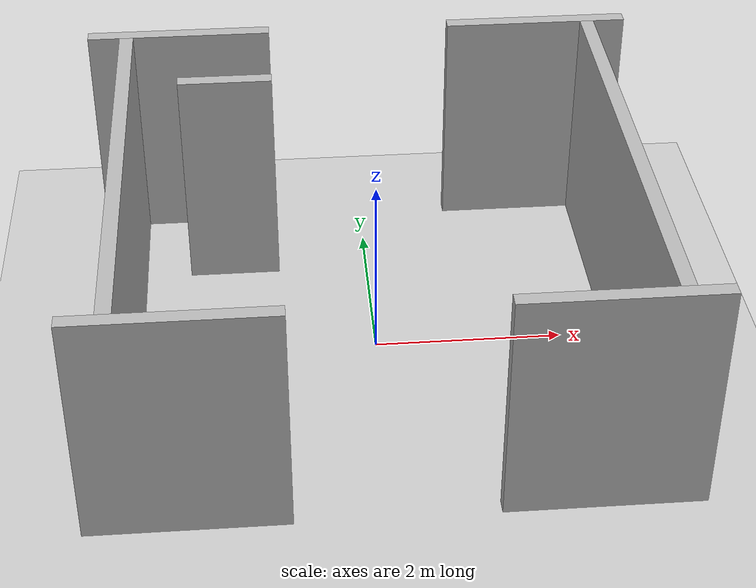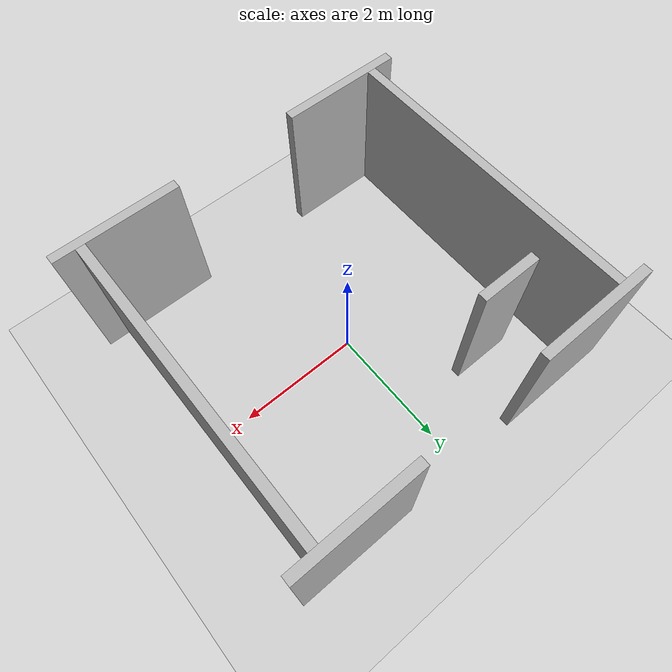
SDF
<?xml version="1.0"?>
<sdf version='1.7'>
 <world name='default'>
  <light name='sun' type='directional'>
    <cast_shadows>1</cast_shadows>
    <pose>0 0 10 0 -0 0</pose>
    <diffuse>0.8 0.8 0.8 1</diffuse>
    <specular>0.2 0.2 0.2 1</specular>
    <attenuation>
      <range>1000</range>
      <constant>0.9</constant>
      <linear>0.01</linear>
      <quadratic>0.001</quadratic>
    </attenuation>
    <direction>-0.5 0.1 -0.9</direction>
  </light>
  <model name='ground_plane'>
    <static>1</static>
    <link name='link'>
      <collision name='collision'>
        <geometry>
          <plane>
            <normal>0 0 1</normal>
            <size>100 100</size>
          </plane>
        </geometry>
      </collision>
      <visual name='visual'>
        <cast_shadows>0</cast_shadows>
        <geometry>
          <plane>
            <normal>0 0 1</normal>
            <size>100 100</size>
          </plane>
        </geometry>
        <material>
          <script>
            <uri>file://media/materials/scripts/gazebo.material</uri>
            <name>Gazebo/Grey</name>
          </script>
        </material>
      </visual>
    </link>
  </model>
  <gravity>0 0 -9.8</gravity>
  <model name='maze'>
    <static>1</static>
    <link name='Wall_0'>
      <pose>-2 2.575 1.25 0 -0 0</pose>
      <collision name='collision'>
        <geometry>
          <box><size>2 0.15 2.5</size></box>
        </geometry>
      </collision>
      <visual name='visual'>
        <geometry>
          <box><size>2 0.15 2.5</size></box>
        </geometry>
      </visual>
    </link>
    <link name='Wall_1'>
      <pose>2 2.575 1.25 0 -0 0</pose>
      <collision name='collision'>
        <geometry>
          <box><size>2 0.15 2.5</size></box>
        </geometry>
      </collision>
      <visual name='visual'>
        <geometry>
          <box><size>2 0.15 2.5</size></box>
        </geometry>
      </visual>
    </link>
    <link name='Wall_2'>
      <pose>-2 -2.575 1.25 0 -0 0</pose>
      <collision name='collision'>
        <geometry>
          <box><size>2 0.15 2.5</size></box>
        </geometry>
      </collision>
      <visual name='visual'>
        <geometry>
          <box><size>2 0.15 2.5</size></box>
        </geometry>
      </visual>
    </link>
    <link name='Wall_3'>
      <pose>2 -2.575 1.25 0 -0 0</pose>
      <collision name='collision'>
        <geometry>
          <box><size>2 0.15 2.5</size></box>
        </geometry>
      </collision>
      <visual name='visual'>
        <geometry>
          <box><size>2 0.15 2.5</size></box>
        </geometry>
      </visual>
    </link>
    <link name='Wall_4'>
      <pose>-2.575 0 1.25 0 -0 1.5708</pose>
      <collision name='collision'>
        <geometry>
          <box><size>5 0.15 2.5</size></box>
        </geometry>
      </collision>
      <visual name='visual'>
        <geometry>
          <box><size>5 0.15 2.5</size></box>
        </geometry>
      </visual>
    </link>
    <link name='Wall_5'>
      <pose>2.575 0 1.25 0 -0 1.5708</pose>
      <collision name='collision'>
        <geometry>
          <box><size>5 0.15 2.5</size></box>
        </geometry>
      </collision>
      <visual name='visual'>
        <geometry>
          <box><size>5 0.15 2.5</size></box>
        </geometry>
      </visual>
    </link>
    <link name='Wall_6'>
      <pose>-1.5 1.5 1.25 0 -0 0</pose>
      <collision name='collision'>
        <geometry>
          <box><size>1 0.15 2.5</size></box>
        </geometry>
      </collision>
      <visual name='visual'>
        <geometry>
          <box><size>1 0.15 2.5</size></box>
        </geometry>
      </visual>
    </link>
  </model>
 </world>
</sdf>
